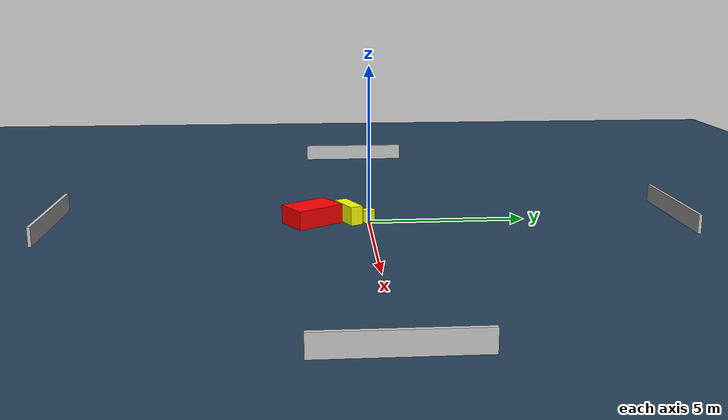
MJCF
<?xml version="1.0" ?>
<mujoco model="generated_environment">
  <option timestep="0.01" integrator="RK4" cone="elliptic"/>
  <default>
    <geom density="1"/>
  </default>
  <asset>
    <texture builtin="gradient" height="3072" name="skybox" rgb1="0.3 0.5 0.7" rgb2="0 0 0" type="skybox" width="512"/>
    <texture builtin="checker" height="300" name="groundplane" rgb1="0.2 0.3 0.4" rgb2="0.1 0.2 0.3" type="2d" width="300"/>
    <material name="groundplane" reflectance="0.2" texrepeat="5 5" texture="groundplane"/>
  </asset>
  <worldbody>
    <light dir="0 0 -1" directional="true" pos="0 0 1.5"/>
    <geom condim="3" friction="0.5 0.005 0.001" material="groundplane" name="floor" pos="0 0 0" size="0 0 0.05" type="plane"/>
    <body name="walls">
      <geom name="wall_1" condim="4" pos="-10.0 0.0 0.3" rgba="0.800000011920929 0.800000011920929 0.800000011920929 1.0" size="0.05 2.0 0.3" type="box"/>
      <geom name="wall_2" condim="4" pos="10.0 0.0 0.3" rgba="0.800000011920929 0.800000011920929 0.800000011920929 1.0" size="0.05 2.0 0.3" type="box"/>
      <geom name="wall_3" condim="4" pos="0.0 -10.0 0.3" rgba="0.800000011920929 0.800000011920929 0.800000011920929 1.0" size="2.0 0.05 0.3" type="box"/>
      <geom name="wall_4" condim="4" pos="0.0 10.0 0.3" rgba="0.800000011920929 0.800000011920929 0.800000011920929 1.0" size="2.0 0.05 0.3" type="box"/>
    </body>
    <body name="robot">
      <joint name="joint_x" type="slide" pos="0 0 0" axis="1 0 0"/>
      <joint name="joint_y" type="slide" pos="0 0 0" axis="0 1 0"/>
      <geom name="robot" type="cylinder" pos="0.0 0.0 0.2" size="0.2 0.2 0.0" mass="5.0" friction="1.0 0.005 0.0001" condim="4" rgba="1.0 1.0 0.0 1.0"/>
    </body>
    <body name="obstacle_1_movable">
      <geom name="obstacle_1_movable" condim="4" pos="-0.1271043169177404 -0.6416433056478754 0.3" euler="0 0 116.21800270456895" friction="0.0 0.005 0.001" rgba="1.0 1.0 0.0 1.0" size="0.2111235459703057 0.5444477426073513 0.3" type="box" mass="0.1"/>
      <joint type="free"/>
    </body>
    <body name="obstacle_2_static">
      <geom name="obstacle_2_static" condim="4" pos="-0.0052674491310465196 -1.813026233639408 0.3" euler="0 0 212.77293349572204" friction="0.0 0.005 0.001" rgba="1.0 0.0 0.0 1.0" size="0.5400102861319216 0.7924397204685796 0.3" type="box"/>
    </body>
  </worldbody>
  <actuator>
    <motor name="actuator_x" joint="joint_x" gear="1" ctrlrange="-1 1"/>
    <motor name="actuator_y" joint="joint_y" gear="1" ctrlrange="-1 1"/>
  </actuator>
</mujoco>
